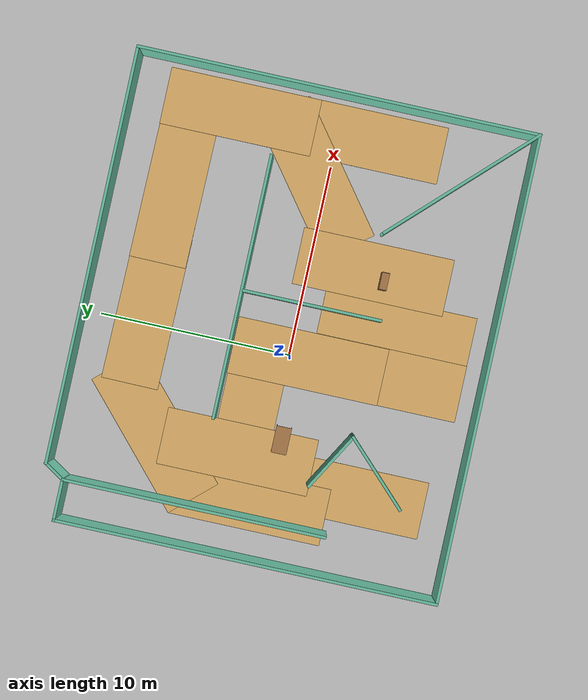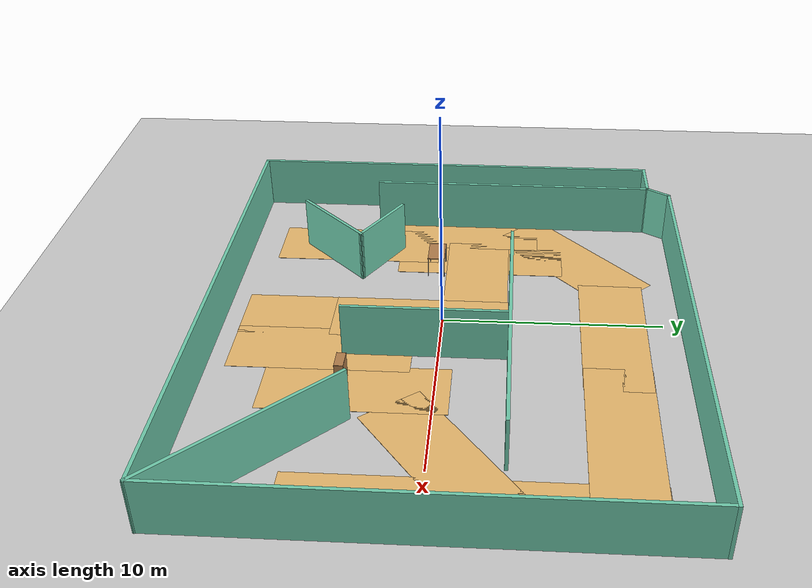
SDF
<sdf version="1.7">
 <world name="default">
  <light name="sun" type="directional">
   <pose>0 0 10 0 -0 0</pose>
   <diffuse>0.8 0.8 0.8 1</diffuse>
   <specular>0.1 0.1 0.1 1</specular>
   <attenuation>
    <range>1000</range>
    <constant>0.9</constant>
    <linear>0.01</linear>
    <quadratic>0.001</quadratic>
   </attenuation>
   <direction>-0.5 0.5 -1</direction>
   <spot><inner_angle>0</inner_angle><outer_angle>0</outer_angle><falloff>0</falloff></spot>
  </light>
  <model name="ground_plane">
   <static>1</static>
   <link name="link">
    <collision name="collision">
     <geometry><plane><normal>0 0 1</normal><size>100 100</size></plane></geometry>
     <surface><friction><ode><mu>100</mu><mu2>50</mu2></ode></friction></surface>
    </collision>
    <visual name="visual">
     <cast_shadows>0</cast_shadows>
     <geometry><plane><normal>0 0 1</normal><size>100 100</size></plane></geometry>
     <material>
      <script><uri>file://media/materials/scripts/gazebo.material</uri><name>Gazebo/Grey</name></script>
     </material>
    </visual>
   </link>
  </model>
  <gravity>0 0 -9.8</gravity>
  <magnetic_field>6e-06 2.3e-05 -4.2e-05</magnetic_field>
  <atmosphere type="adiabatic"/>
  <physics name="default_physics" default="0" type="ode">
   <max_step_size>0.001</max_step_size>
   <real_time_factor>1</real_time_factor>
   <real_time_update_rate>1000</real_time_update_rate>
  </physics>
  <scene><ambient>0.4 0.4 0.4 1</ambient><background>0.7 0.7 0.7 1</background><shadows>1</shadows></scene>
  <spherical_coordinates>
   <surface_model>EARTH_WGS84</surface_model>
   <latitude_deg>0</latitude_deg>
   <longitude_deg>0</longitude_deg>
   <elevation>0</elevation>
   <heading_deg>0</heading_deg>
  </spherical_coordinates>
  <model name="bookshelf">
   <static>1</static>
   <link name="link">
    <inertial><mass>1</mass></inertial>
    <collision name="back">
     <pose>0 0.005 0.6 0 -0 0</pose>
     <geometry><box><size>0.9 0.01 1.2</size></box></geometry>
    </collision>
    <visual name="visual1">
     <pose>0 0.005 0.6 0 -0 0</pose>
     <geometry><box><size>0.9 0.01 1.2</size></box></geometry>
     <material>
      <script><uri>file://media/materials/scripts/gazebo.material</uri><name>Gazebo/Wood</name></script>
     </material>
    </visual>
    <collision name="left_side">
     <pose>0.45 -0.195 0.6 0 -0 0</pose>
     <geometry><box><size>0.02 0.4 1.2</size></box></geometry>
    </collision>
    <visual name="visual2">
     <pose>0.45 -0.195 0.6 0 -0 0</pose>
     <geometry><box><size>0.02 0.4 1.2</size></box></geometry>
     <material>
      <script><uri>file://media/materials/scripts/gazebo.material</uri><name>Gazebo/Wood</name></script>
     </material>
    </visual>
    <collision name="right_side">
     <pose>-0.45 -0.195 0.6 0 -0 0</pose>
     <geometry><box><size>0.02 0.4 1.2</size></box></geometry>
    </collision>
    <visual name="visual3">
     <pose>-0.45 -0.195 0.6 0 -0 0</pose>
     <geometry><box><size>0.02 0.4 1.2</size></box></geometry>
     <material>
      <script><uri>file://media/materials/scripts/gazebo.material</uri><name>Gazebo/Wood</name></script>
     </material>
    </visual>
    <collision name="bottom">
     <pose>0 -0.195 0.03 0 -0 0</pose>
     <geometry><box><size>0.88 0.4 0.06</size></box></geometry>
    </collision>
    <visual name="visual4">
     <pose>0 -0.195 0.03 0 -0 0</pose>
     <geometry><box><size>0.88 0.4 0.06</size></box></geometry>
     <material>
      <script><uri>file://media/materials/scripts/gazebo.material</uri><name>Gazebo/Wood</name></script>
     </material>
    </visual>
    <collision name="top">
     <pose>0 -0.195 1.19 0 -0 0</pose>
     <geometry><box><size>0.88 0.4 0.02</size></box></geometry>
    </collision>
    <visual name="visual5">
     <pose>0 -0.195 1.19 0 -0 0</pose>
     <geometry><box><size>0.88 0.4 0.02</size></box></geometry>
     <material>
      <script><uri>file://media/materials/scripts/gazebo.material</uri><name>Gazebo/Wood</name></script>
     </material>
    </visual>
    <collision name="low_shelf">
     <pose>0 -0.195 0.43 0 -0 0</pose>
     <geometry><box><size>0.88 0.4 0.02</size></box></geometry>
    </collision>
    <visual name="visual6">
     <pose>0 -0.195 0.43 0 -0 0</pose>
     <geometry><box><size>0.88 0.4 0.02</size></box></geometry>
     <material>
      <script><uri>file://media/materials/scripts/gazebo.material</uri><name>Gazebo/Wood</name></script>
     </material>
    </visual>
    <collision name="high_shelf">
     <pose>0 -0.195 0.8 0 -0 0</pose>
     <geometry><box><size>0.88 0.4 0.02</size></box></geometry>
    </collision>
    <visual name="visual7">
     <pose>0 -0.195 0.8 0 -0 0</pose>
     <geometry><box><size>0.88 0.4 0.02</size></box></geometry>
     <material>
      <script><uri>file://media/materials/scripts/gazebo.material</uri><name>Gazebo/Wood</name></script>
     </material>
    </visual>
   </link>
   <pose>4.78412 -3.73836 0 0 -0 0</pose>
  </model>
  <model name="table">
   <static>0</static>
   <link name="link">
    <collision name="surface">
     <pose>0 0 1 0 -0 0</pose>
     <geometry><box><size>1.5 0.8 0.03</size></box></geometry>
     <surface><friction><ode><mu>0.6</mu><mu2>0.6</mu2></ode></friction></surface>
    </collision>
    <visual name="visual1">
     <pose>0 0 1 0 -0 0</pose>
     <geometry><box><size>1.4 0.8 0.04</size></box></geometry>
     <material>
      <script><uri>file://media/materials/scripts/gazebo.material</uri><name>Gazebo/Wood</name></script>
     </material>
    </visual>
    <collision name="front_left_leg">
     <pose>0.68 0.38 0.5 0 -0 0</pose>
     <geometry><cylinder><radius>0.02</radius><length>1</length></cylinder></geometry>
    </collision>
    <visual name="front_left_leg">
     <pose>0.68 0.38 0.5 0 -0 0</pose>
     <geometry><cylinder><radius>0.02</radius><length>1</length></cylinder></geometry>
     <material>
      <script><uri>file://media/materials/scripts/gazebo.material</uri><name>Gazebo/Grey</name></script>
     </material>
    </visual>
    <collision name="front_right_leg">
     <pose>0.68 -0.38 0.5 0 -0 0</pose>
     <geometry><cylinder><radius>0.02</radius><length>1</length></cylinder></geometry>
    </collision>
    <visual name="front_right_leg">
     <pose>0.68 -0.38 0.5 0 -0 0</pose>
     <geometry><cylinder><radius>0.02</radius><length>1</length></cylinder></geometry>
     <material>
      <script><uri>file://media/materials/scripts/gazebo.material</uri><name>Gazebo/Grey</name></script>
     </material>
    </visual>
    <collision name="back_right_leg">
     <pose>-0.68 -0.38 0.5 0 -0 0</pose>
     <geometry><cylinder><radius>0.02</radius><length>1</length></cylinder></geometry>
    </collision>
    <visual name="back_right_leg">
     <pose>-0.68 -0.38 0.5 0 -0 0</pose>
     <geometry><cylinder><radius>0.02</radius><length>1</length></cylinder></geometry>
     <material>
      <script><uri>file://media/materials/scripts/gazebo.material</uri><name>Gazebo/Grey</name></script>
     </material>
    </visual>
    <collision name="back_left_leg">
     <pose>-0.68 0.38 0.5 0 -0 0</pose>
     <geometry><cylinder><radius>0.02</radius><length>1</length></cylinder></geometry>
    </collision>
    <visual name="back_left_leg">
     <pose>-0.68 0.38 0.5 0 -0 0</pose>
     <geometry><cylinder><radius>0.02</radius><length>1</length></cylinder></geometry>
     <material>
      <script><uri>file://media/materials/scripts/gazebo.material</uri><name>Gazebo/Grey</name></script>
     </material>
    </visual>
    <inertial>
     <inertia><ixx>1</ixx><ixy>0</ixy><ixz>0</ixz><iyy>1</iyy><iyz>0</iyz><izz>1</izz></inertia>
     <mass>1</mass>
    </inertial>
   </link>
   <pose>-4.34248 -0.532954 -2e-06 -1e-06 -0 -0</pose>
  </model>
  <model name="green_maze">
   <pose>1.50972 0.438436 0 0 -0 0</pose>
   <link name="Wall_1">
    <collision name="Wall_1_Collision">
     <geometry><box><size>13.75 0.15 2.5</size></box></geometry>
     <pose>0 0 1.25 0 -0 0</pose>
    </collision>
    <visual name="Wall_1_Visual">
     <pose>0 0 1.25 0 -0 0</pose>
     <geometry><box><size>13.75 0.15 2.5</size></box></geometry>
     <material>
      <script><uri>file://media/materials/scripts/gazebo.material</uri><name>Gazebo/Grey</name></script>
      <ambient>0.435294 0.796078 0.67451 1</ambient>
     </material>
     <meta><layer>0</layer></meta>
    </visual>
    <pose>-10.0905 2.62615 0 0 -0 1.5708</pose>
    <self_collide>1</self_collide>
   </link>
   <link name="Wall_11">
    <collision name="Wall_11_Collision">
     <geometry><box><size>7.25 0.15 2.5</size></box></geometry>
     <pose>0 0 1.25 0 -0 0</pose>
    </collision>
    <visual name="Wall_11_Visual">
     <pose>0 0 1.25 0 -0 0</pose>
     <geometry><box><size>7.25 0.15 2.5</size></box></geometry>
     <material>
      <script><uri>file://media/materials/scripts/gazebo.material</uri><name>Gazebo/Grey</name></script>
      <ambient>0.435294 0.796078 0.67451 1</ambient>
     </material>
     <meta><layer>0</layer></meta>
    </visual>
    <pose>1.2389 -1.00585 0 0 -0 -1.5708</pose>
   </link>
   <link name="Wall_13">
    <collision name="Wall_13_Collision">
     <geometry><box><size>9.47577 0.15 2.5</size></box></geometry>
     <pose>0 0 1.25 0 -0 0</pose>
    </collision>
    <visual name="Wall_13_Visual">
     <pose>0 0 1.25 0 -0 0</pose>
     <geometry><box><size>9.47577 0.15 2.5</size></box></geometry>
     <material>
      <script><uri>file://media/materials/scripts/gazebo.material</uri><name>Gazebo/Grey</name></script>
      <ambient>0.435294 0.796078 0.67451 1</ambient>
     </material>
     <meta><layer>0</layer></meta>
    </visual>
    <pose>8.89278 -7.0965 0 0 -0 -0.794598</pose>
   </link>
   <link name="Wall_16">
    <collision name="Wall_16_Collision">
     <geometry><box><size>4.5 0.15 2.5</size></box></geometry>
     <pose>0 0 1.25 0 -0 0</pose>
    </collision>
    <visual name="Wall_16_Visual">
     <pose>0 0 1.25 0 -0 0</pose>
     <geometry><box><size>4.5 0.15 2.5</size></box></geometry>
     <material>
      <script><uri>file://media/materials/scripts/gazebo.material</uri><name>Gazebo/Grey</name></script>
      <ambient>0.435294 0.796078 0.67451 1</ambient>
     </material>
     <meta><layer>0</layer></meta>
    </visual>
    <pose>-6.37207 -6.02987 0 0 -0 0.785398</pose>
   </link>
   <link name="Wall_17">
    <collision name="Wall_17_Collision">
     <geometry><box><size>3.5 0.15 2.5</size></box></geometry>
     <pose>0 0 1.25 0 -0 0</pose>
    </collision>
    <visual name="Wall_17_Visual">
     <pose>0 0 1.25 0 -0 0</pose>
     <geometry><box><size>3.5 0.15 2.5</size></box></geometry>
     <material>
      <script><uri>file://media/materials/scripts/gazebo.material</uri><name>Gazebo/Grey</name></script>
      <ambient>0.435294 0.796078 0.67451 1</ambient>
     </material>
     <meta><layer>0</layer></meta>
    </visual>
    <pose>-6.28471 -3.65441 0 0 -0 2.61799</pose>
   </link>
   <link name="Wall_2">
    <collision name="Wall_2_Collision">
     <geometry><box><size>2.25 0.15 2.5</size></box></geometry>
     <pose>0 0 1.25 0 -0 0</pose>
    </collision>
    <visual name="Wall_2_Visual">
     <pose>0 0 1.25 0 -0 0</pose>
     <geometry><box><size>2.25 0.15 2.5</size></box></geometry>
     <material>
      <script><uri>file://media/materials/scripts/gazebo.material</uri><name>Gazebo/Grey</name></script>
      <ambient>0.435294 0.796078 0.67451 1</ambient>
     </material>
     <meta><layer>0</layer></meta>
    </visual>
    <pose>-11.1405 9.42615 0 0 -0 3.14159</pose>
   </link>
   <link name="Wall_3">
    <collision name="Wall_3_Collision">
     <geometry><box><size>20 0.15 2.5</size></box></geometry>
     <pose>0 0 1.25 0 -0 0</pose>
    </collision>
    <visual name="Wall_3_Visual">
     <pose>0 0 1.25 0 -0 0</pose>
     <geometry><box><size>20 0.15 2.5</size></box></geometry>
     <material>
      <script><uri>file://media/materials/scripts/gazebo.material</uri><name>Gazebo/Grey</name></script>
      <ambient>0.435294 0.796078 0.67451 1</ambient>
     </material>
     <meta><layer>0</layer></meta>
    </visual>
    <pose>-12.1905 -0.498848 0 0 -0 -1.5708</pose>
   </link>
   <link name="Wall_4">
    <collision name="Wall_4_Collision">
     <geometry><box><size>24.5 0.15 2.5</size></box></geometry>
     <pose>0 0 1.25 0 -0 0</pose>
    </collision>
    <visual name="Wall_4_Visual">
     <pose>0 0 1.25 0 -0 0</pose>
     <geometry><box><size>24.5 0.15 2.5</size></box></geometry>
     <material>
      <script><uri>file://media/materials/scripts/gazebo.material</uri><name>Gazebo/Grey</name></script>
      <ambient>0.435294 0.796078 0.67451 1</ambient>
     </material>
     <meta><layer>0</layer></meta>
    </visual>
    <pose>-0.01553 -10.4238 0 0 -0 0</pose>
   </link>
   <link name="Wall_5">
    <collision name="Wall_5_Collision">
     <geometry><box><size>21 0.15 2.5</size></box></geometry>
     <pose>0 0 1.25 0 -0 0</pose>
    </collision>
    <visual name="Wall_5_Visual">
     <pose>0 0 1.25 0 -0 0</pose>
     <geometry><box><size>21 0.15 2.5</size></box></geometry>
     <material>
      <script><uri>file://media/materials/scripts/gazebo.material</uri><name>Gazebo/Grey</name></script>
      <ambient>0.435294 0.796078 0.67451 1</ambient>
     </material>
     <meta><layer>0</layer></meta>
    </visual>
    <pose>12.1595 0.001152 0 0 -0 1.5708</pose>
   </link>
   <link name="Wall_6">
    <collision name="Wall_6_Collision">
     <geometry><box><size>21.75 0.15 2.5</size></box></geometry>
     <pose>0 0 1.25 0 -0 0</pose>
    </collision>
    <visual name="Wall_6_Visual">
     <pose>0 0 1.25 0 -0 0</pose>
     <geometry><box><size>21.75 0.15 2.5</size></box></geometry>
     <material>
      <script><uri>file://media/materials/scripts/gazebo.material</uri><name>Gazebo/Grey</name></script>
      <ambient>0.435294 0.796078 0.67451 1</ambient>
     </material>
     <meta><layer>0</layer></meta>
    </visual>
    <pose>1.35947 10.4262 0 0 -0 3.14159</pose>
   </link>
   <link name="Wall_7">
    <collision name="Wall_7_Collision">
     <geometry><box><size>1.34269 0.15 2.5</size></box></geometry>
     <pose>0 0 1.25 0 -0 0</pose>
    </collision>
    <visual name="Wall_7_Visual">
     <pose>0 0 1.25 0 -0 0</pose>
     <geometry><box><size>1.34269 0.15 2.5</size></box></geometry>
     <material>
      <script><uri>file://media/materials/scripts/gazebo.material</uri><name>Gazebo/Grey</name></script>
      <ambient>0.435294 0.796078 0.67451 1</ambient>
     </material>
     <meta><layer>0</layer></meta>
    </visual>
    <pose>-9.76553 9.92615 0 0 -0 -2.14717</pose>
   </link>
   <link name="Wall_9">
    <collision name="Wall_9_Collision">
     <geometry><box><size>13.75 0.15 2.5</size></box></geometry>
     <pose>0 0 1.25 0 -0 0</pose>
    </collision>
    <visual name="Wall_9_Visual">
     <pose>0 0 1.25 0 -0 0</pose>
     <geometry><box><size>13.75 0.15 2.5</size></box></geometry>
     <material>
      <script><uri>file://media/materials/scripts/gazebo.material</uri><name>Gazebo/Grey</name></script>
      <ambient>0.435294 0.796078 0.67451 1</ambient>
     </material>
     <meta><layer>0</layer></meta>
    </visual>
    <pose>1.40458 2.65116 0 0 -0 0</pose>
   </link>
   <static>1</static>
  </model>
  <model name="Beige_Pavement">
   <link name="link_0">
    <inertial>
     <mass>1</mass>
     <inertia>
      <ixx>0.166667</ixx>
      <ixy>0</ixy>
      <ixz>0</ixz>
      <iyy>0.166667</iyy>
      <iyz>0</iyz>
      <izz>0.166667</izz>
     </inertia>
    </inertial>
    <gravity>0</gravity>
    <self_collide>1</self_collide>
    <kinematic>1</kinematic>
    <visual name="visual">
     <geometry><box><size>3 8 0.01</size></box></geometry>
     <material>
      <lighting>1</lighting>
      <script><uri>file://media/materials/scripts/gazebo.material</uri><name>Gazebo/Grey</name></script>
      <shader type="pixel"><normal_map>__default__</normal_map></shader>
      <ambient>0.914 0.725 0.431 1</ambient>
      <diffuse>0.7 0.7 0.7 1</diffuse>
      <specular>0.01 0.01 0.01 1</specular>
      <emissive>0 0 0 1</emissive>
     </material>
    </visual>
   </link>
   <static>0</static>
   <pose>-0.082491 -1.00459 0 0 -0 0</pose>
  </model>
  <model name="Beige_Pavement_clone">
   <link name="link_0">
    <inertial>
     <mass>1</mass>
     <inertia>
      <ixx>0.166667</ixx>
      <ixy>0</ixy>
      <ixz>0</ixz>
      <iyy>0.166667</iyy>
      <iyz>0</iyz>
      <izz>0.166667</izz>
     </inertia>
    </inertial>
    <gravity>0</gravity>
    <self_collide>1</self_collide>
    <kinematic>1</kinematic>
    <visual name="visual">
     <geometry><box><size>3 8 0.01</size></box></geometry>
     <material>
      <lighting>1</lighting>
      <script><uri>file://media/materials/scripts/gazebo.material</uri><name>Gazebo/Grey</name></script>
      <shader type="pixel"><normal_map>__default__</normal_map></shader>
      <ambient>0.914 0.725 0.431 1</ambient>
      <diffuse>0.7 0.7 0.7 1</diffuse>
      <specular>0.01 0.01 0.01 1</specular>
      <emissive>0 0 0 1</emissive>
     </material>
    </visual>
   </link>
   <static>0</static>
   <pose>-5.48243 1.56069 0 0 -0 0</pose>
  </model>
  <model name="Beige_Pavement_clone_0">
   <link name="link_0">
    <inertial>
     <mass>1</mass>
     <inertia>
      <ixx>0.166667</ixx>
      <ixy>0</ixy>
      <ixz>0</ixz>
      <iyy>0.166667</iyy>
      <iyz>0</iyz>
      <izz>0.166667</izz>
     </inertia>
    </inertial>
    <gravity>0</gravity>
    <self_collide>1</self_collide>
    <kinematic>1</kinematic>
    <visual name="visual">
     <geometry><box><size>3 8 0.01</size></box></geometry>
     <material>
      <lighting>1</lighting>
      <script><uri>file://media/materials/scripts/gazebo.material</uri><name>Gazebo/Grey</name></script>
      <shader type="pixel"><normal_map>__default__</normal_map></shader>
      <ambient>0.914 0.725 0.431 1</ambient>
      <diffuse>0.7 0.7 0.7 1</diffuse>
      <specular>0.01 0.01 0.01 1</specular>
      <emissive>0 0 0 1</emissive>
     </material>
    </visual>
   </link>
   <static>0</static>
   <pose>5.18394 -3.31669 0 0 -0 0</pose>
  </model>
  <model name="Beige_Pavement_clone_1">
   <link name="link_0">
    <inertial>
     <mass>1</mass>
     <inertia>
      <ixx>0.166667</ixx>
      <ixy>0</ixy>
      <ixz>0</ixz>
      <iyy>0.166667</iyy>
      <iyz>0</iyz>
      <izz>0.166667</izz>
     </inertia>
    </inertial>
    <gravity>0</gravity>
    <self_collide>1</self_collide>
    <kinematic>1</kinematic>
    <visual name="visual">
     <geometry><box><size>3 8 0.01</size></box></geometry>
     <material>
      <lighting>1</lighting>
      <script><uri>file://media/materials/scripts/gazebo.material</uri><name>Gazebo/Grey</name></script>
      <shader type="pixel"><normal_map>__default__</normal_map></shader>
      <ambient>0.914 0.725 0.431 1</ambient>
      <diffuse>0.7 0.7 0.7 1</diffuse>
      <specular>0.01 0.01 0.01 1</specular>
      <emissive>0 0 0 1</emissive>
     </material>
    </visual>
   </link>
   <static>0</static>
   <pose>11.8368 5.21078 0 0 -0 0</pose>
  </model>
  <model name="Beige_Pavement_clone_2">
   <link name="link_0">
    <inertial>
     <mass>1</mass>
     <inertia>
      <ixx>0.166667</ixx>
      <ixy>0</ixy>
      <ixz>0</ixz>
      <iyy>0.166667</iyy>
      <iyz>0</iyz>
      <izz>0.166667</izz>
     </inertia>
    </inertial>
    <gravity>0</gravity>
    <self_collide>1</self_collide>
    <kinematic>1</kinematic>
    <visual name="visual">
     <geometry><box><size>3 8 0.01</size></box></geometry>
     <material>
      <lighting>1</lighting>
      <script><uri>file://media/materials/scripts/gazebo.material</uri><name>Gazebo/Grey</name></script>
      <shader type="pixel"><normal_map>__default__</normal_map></shader>
      <ambient>0.914 0.725 0.431 1</ambient>
      <diffuse>0.7 0.7 0.7 1</diffuse>
      <specular>0.01 0.01 0.01 1</specular>
      <emissive>0 0 0 1</emissive>
     </material>
    </visual>
   </link>
   <static>0</static>
   <pose>9.31636 0.644276 0 0 0 -0.920942</pose>
  </model>
  <model name="Beige_Pavement_clone_3">
   <link name="link_0">
    <inertial>
     <mass>1</mass>
     <inertia>
      <ixx>0.166667</ixx>
      <ixy>0</ixy>
      <ixz>0</ixz>
      <iyy>0.166667</iyy>
      <iyz>0</iyz>
      <izz>0.166667</izz>
     </inertia>
    </inertial>
    <gravity>0</gravity>
    <self_collide>1</self_collide>
    <kinematic>1</kinematic>
    <visual name="visual">
     <geometry><box><size>3 8 0.01</size></box></geometry>
     <material>
      <lighting>1</lighting>
      <script><uri>file://media/materials/scripts/gazebo.material</uri><name>Gazebo/Grey</name></script>
      <shader type="pixel"><normal_map>__default__</normal_map></shader>
      <ambient>0.914 0.725 0.431 1</ambient>
      <diffuse>0.7 0.7 0.7 1</diffuse>
      <specular>0.01 0.01 0.01 1</specular>
      <emissive>0 0 0 1</emissive>
     </material>
    </visual>
   </link>
   <static>0</static>
   <pose>-2.82438 1.44656 0 0 0 -1.56897</pose>
  </model>
  <model name="Beige_Pavement_clone_1_clone">
   <link name="link_0">
    <inertial>
     <mass>1</mass>
     <inertia>
      <ixx>0.166667</ixx>
      <ixy>0</ixy>
      <ixz>0</ixz>
      <iyy>0.166667</iyy>
      <iyz>0</iyz>
      <izz>0.166667</izz>
     </inertia>
    </inertial>
    <gravity>0</gravity>
    <self_collide>1</self_collide>
    <kinematic>1</kinematic>
    <visual name="visual">
     <geometry><box><size>3 8 0.01</size></box></geometry>
     <material>
      <lighting>1</lighting>
      <script><uri>file://media/materials/scripts/gazebo.material</uri><name>Gazebo/Grey</name></script>
      <shader type="pixel"><normal_map>__default__</normal_map></shader>
      <ambient>0.914 0.725 0.431 1</ambient>
      <diffuse>0.7 0.7 0.7 1</diffuse>
      <specular>0.01 0.01 0.01 1</specular>
      <emissive>0 0 0 1</emissive>
     </material>
    </visual>
   </link>
   <static>0</static>
   <pose>7.25503 7.72004 0 0 -0 1.56123</pose>
  </model>
  <model name="Beige_Pavement_clone_1_clone_0">
   <link name="link_0">
    <inertial>
     <mass>1</mass>
     <inertia>
      <ixx>0.166667</ixx>
      <ixy>0</ixy>
      <ixz>0</ixz>
      <iyy>0.166667</iyy>
      <iyz>0</iyz>
      <izz>0.166667</izz>
     </inertia>
    </inertial>
    <gravity>0</gravity>
    <self_collide>1</self_collide>
    <kinematic>1</kinematic>
    <visual name="visual">
     <geometry><box><size>3 8 0.01</size></box></geometry>
     <material>
      <lighting>1</lighting>
      <script><uri>file://media/materials/scripts/gazebo.material</uri><name>Gazebo/Grey</name></script>
      <shader type="pixel"><normal_map>__default__</normal_map></shader>
      <ambient>0.914 0.725 0.431 1</ambient>
      <diffuse>0.7 0.7 0.7 1</diffuse>
      <specular>0.01 0.01 0.01 1</specular>
      <emissive>0 0 0 1</emissive>
     </material>
    </visual>
   </link>
   <static>0</static>
   <pose>0.774703 7.76863 0 0 -0 1.55986</pose>
  </model>
  <model name="Beige_Pavement_clone_1_clone_1">
   <link name="link_0">
    <inertial>
     <mass>1</mass>
     <inertia>
      <ixx>0.166667</ixx>
      <ixy>0</ixy>
      <ixz>0</ixz>
      <iyy>0.166667</iyy>
      <iyz>0</iyz>
      <izz>0.166667</izz>
     </inertia>
    </inertial>
    <gravity>0</gravity>
    <self_collide>1</self_collide>
    <kinematic>1</kinematic>
    <visual name="visual">
     <geometry><box><size>3 8 0.01</size></box></geometry>
     <material>
      <lighting>1</lighting>
      <script><uri>file://media/materials/scripts/gazebo.material</uri><name>Gazebo/Grey</name></script>
      <shader type="pixel"><normal_map>__default__</normal_map></shader>
      <ambient>0.914 0.725 0.431 1</ambient>
      <diffuse>0.7 0.7 0.7 1</diffuse>
      <specular>0.01 0.01 0.01 1</specular>
      <emissive>0 0 0 1</emissive>
     </material>
    </visual>
   </link>
   <static>0</static>
   <pose>-5.39333 5.98004 0 0 0 -0.83396</pose>
  </model>
  <model name="Beige_Pavement_clone_1_clone_2">
   <link name="link_0">
    <inertial>
     <mass>1</mass>
     <inertia>
      <ixx>0.166667</ixx>
      <ixy>0</ixy>
      <ixz>0</ixz>
      <iyy>0.166667</iyy>
      <iyz>0</iyz>
      <izz>0.166667</izz>
     </inertia>
    </inertial>
    <gravity>0</gravity>
    <self_collide>1</self_collide>
    <kinematic>1</kinematic>
    <visual name="visual">
     <geometry><box><size>3 8 0.01</size></box></geometry>
     <material>
      <lighting>1</lighting>
      <script><uri>file://media/materials/scripts/gazebo.material</uri><name>Gazebo/Grey</name></script>
      <shader type="pixel"><normal_map>__default__</normal_map></shader>
      <ambient>0.914 0.725 0.431 1</ambient>
      <diffuse>0.7 0.7 0.7 1</diffuse>
      <specular>0.01 0.01 0.01 1</specular>
      <emissive>0 0 0 1</emissive>
     </material>
    </visual>
   </link>
   <static>0</static>
   <pose>-7.85524 0.37614 0 0 -0 0</pose>
  </model>
  <model name="Beige_Pavement_clone_1_clone_3">
   <link name="link_0">
    <inertial>
     <mass>1</mass>
     <inertia>
      <ixx>0.166667</ixx>
      <ixy>0</ixy>
      <ixz>0</ixz>
      <iyy>0.166667</iyy>
      <iyz>0</iyz>
      <izz>0.166667</izz>
     </inertia>
    </inertial>
    <gravity>0</gravity>
    <self_collide>1</self_collide>
    <kinematic>1</kinematic>
    <visual name="visual">
     <geometry><box><size>3 8 0.01</size></box></geometry>
     <material>
      <lighting>1</lighting>
      <script><uri>file://media/materials/scripts/gazebo.material</uri><name>Gazebo/Grey</name></script>
      <shader type="pixel"><normal_map>__default__</normal_map></shader>
      <ambient>0.914 0.725 0.431 1</ambient>
      <diffuse>0.7 0.7 0.7 1</diffuse>
      <specular>0.01 0.01 0.01 1</specular>
      <emissive>0 0 0 1</emissive>
     </material>
    </visual>
   </link>
   <static>0</static>
   <pose>-6.4222 -4.5279 0 0 -0 0</pose>
  </model>
  <model name="Beige_Pavement_clone_1_clone_4">
   <link name="link_0">
    <inertial>
     <mass>1</mass>
     <inertia>
      <ixx>0.166667</ixx>
      <ixy>0</ixy>
      <ixz>0</ixz>
      <iyy>0.166667</iyy>
      <iyz>0</iyz>
      <izz>0.166667</izz>
     </inertia>
    </inertial>
    <gravity>0</gravity>
    <self_collide>1</self_collide>
    <kinematic>1</kinematic>
    <visual name="visual">
     <geometry><box><size>3 8 0.01</size></box></geometry>
     <material>
      <lighting>1</lighting>
      <script><uri>file://media/materials/scripts/gazebo.material</uri><name>Gazebo/Grey</name></script>
      <shader type="pixel"><normal_map>__default__</normal_map></shader>
      <ambient>0.914 0.725 0.431 1</ambient>
      <diffuse>0.7 0.7 0.7 1</diffuse>
      <specular>0.01 0.01 0.01 1</specular>
      <emissive>0 0 0 1</emissive>
     </material>
    </visual>
   </link>
   <static>0</static>
   <pose>-0.065081 -5.13524 0 0 -0 0</pose>
  </model>
  <model name="Beige_Pavement_clone_1_clone_5">
   <link name="link_0">
    <inertial>
     <mass>1</mass>
     <inertia>
      <ixx>0.166667</ixx>
      <ixy>0</ixy>
      <ixz>0</ixz>
      <iyy>0.166667</iyy>
      <iyz>0</iyz>
      <izz>0.166667</izz>
     </inertia>
    </inertial>
    <gravity>0</gravity>
    <self_collide>1</self_collide>
    <kinematic>1</kinematic>
    <visual name="visual">
     <geometry><box><size>3 8 0.01</size></box></geometry>
     <material>
      <lighting>1</lighting>
      <script><uri>file://media/materials/scripts/gazebo.material</uri><name>Gazebo/Grey</name></script>
      <shader type="pixel"><normal_map>__default__</normal_map></shader>
      <ambient>0.914 0.725 0.431 1</ambient>
      <diffuse>0.7 0.7 0.7 1</diffuse>
      <specular>0.01 0.01 0.01 1</specular>
      <emissive>0 0 0 1</emissive>
     </material>
    </visual>
   </link>
   <static>0</static>
   <pose>2.47512 -5.12502 0 0 -0 0</pose>
  </model>
  <model name="Beige_Pavement_clone_1_clone_7">
   <link name="link_0">
    <inertial>
     <mass>1</mass>
     <inertia>
      <ixx>0.166667</ixx>
      <ixy>0</ixy>
      <ixz>0</ixz>
      <iyy>0.166667</iyy>
      <iyz>0</iyz>
      <izz>0.166667</izz>
     </inertia>
    </inertial>
    <gravity>0</gravity>
    <self_collide>1</self_collide>
    <kinematic>1</kinematic>
    <visual name="visual">
     <geometry><box><size>3 8 0.01</size></box></geometry>
     <material>
      <lighting>1</lighting>
      <script><uri>file://media/materials/scripts/gazebo.material</uri><name>Gazebo/Grey</name></script>
      <shader type="pixel"><normal_map>__default__</normal_map></shader>
      <ambient>0.914 0.725 0.431 1</ambient>
      <diffuse>0.7 0.7 0.7 1</diffuse>
      <specular>0.01 0.01 0.01 1</specular>
      <emissive>0 0 0 1</emissive>
     </material>
    </visual>
   </link>
   <static>0</static>
   <pose>11.834 -1.54315 0 0 -0 0</pose>
  </model>
 </world>
</sdf>
